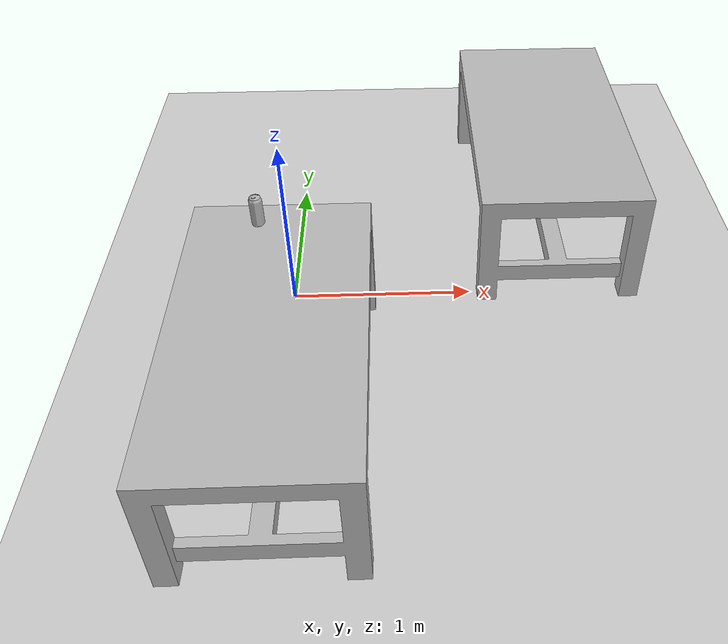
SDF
<sdf version="1.6">
  <world name="default">
    <physics name="1ms" type="dart">
      <max_step_size>0.001</max_step_size>
      <real_time_factor>1.0</real_time_factor>
    </physics>

    <plugin
      filename="ignition-gazebo-physics-system"
      name="ignition::gazebo::systems::Physics">
    </plugin>
    <plugin
      filename="ignition-gazebo-user-commands-system"
      name="ignition::gazebo::systems::UserCommands">
    </plugin>
    <plugin
      filename="ignition-gazebo-scene-broadcaster-system"
      name="ignition::gazebo::systems::SceneBroadcaster">
    </plugin>
    <plugin
      filename="ignition-gazebo-contact-system"
      name="ignition::gazebo::systems::Contact">
    </plugin>

    <!-- Lidar -->
    <plugin
      filename="libignition-gazebo-sensors-system.so"
      name="ignition::gazebo::systems::Sensors">
      <render_engine>ogre2</render_engine>
    </plugin>

    <!-- IMU -->
    <plugin
      filename="libignition-gazebo-imu-system.so"
      name="ignition::gazebo::systems::Imu">
    </plugin>

    <!-- Magnetometer -->
    <plugin
      filename="ignition-gazebo-magnetometer-system"
      name="ignition::gazebo::systems::Magnetometer">
    </plugin>

    <light type="directional" name="sun">
      <cast_shadows>true</cast_shadows>
      <pose>0 0 10 0 0 0</pose>
      <diffuse>0.8 0.8 0.8 1</diffuse>
      <specular>0.2 0.2 0.2 1</specular>
      <attenuation>
        <range>1000</range>
        <constant>0.9</constant>
        <linear>0.01</linear>
        <quadratic>0.001</quadratic>
      </attenuation>
      <direction>-0.5 0.1 -0.9</direction>
    </light>

    <model name="ground_plane">
      <static>true</static>
      <link name="link">
        <collision name="collision">
          <geometry>
            <plane>
              <normal>0 0 1</normal>
              <size>100 100</size>
            </plane>
          </geometry>
        </collision>
        <visual name="visual">
          <geometry>
            <plane>
              <normal>0 0 1</normal>
              <size>100 100</size>
            </plane>
          </geometry>
          <material>
            <ambient>0.8 0.8 0.8 1</ambient>
            <diffuse>0.8 0.8 0.8 1</diffuse>
            <specular>0.8 0.8 0.8 1</specular>
          </material>
        </visual>
      </link>
    </model>

    <include>
      <static>false</static>
      <uri>https://fuel.ignitionrobotics.org/1.0/OpenRobotics/models/Coke</uri>
      <pose>-0.025 -0.6 1.0 0 0 0</pose>
    </include>

    <!-- TODO: Move these models under repository -->
    <include>
      <name>table_start</name>
      <static>true</static>
      <pose>0 -0.9 0 0 0 0</pose>
      <uri>https://fuel.ignitionrobotics.org/1.0/OpenRobotics/models/Table</uri>
    </include>

    <include>
      <name>table_end</name>
      <static>true</static>
      <pose>1.5 0.8 0 0 0 0</pose>
      <uri>https://fuel.ignitionrobotics.org/1.0/OpenRobotics/models/Table</uri>
    </include>

  </world>
</sdf>

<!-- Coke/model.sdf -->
<sdf version="1.6">
  <model name='Coke'>
    <static>true</static>
    <link name="body">
      <pose>0 0 0 0 0 0</pose>

        <visual name="visual">
          <geometry>
            <mesh><uri>model://Coke/meshes/coke.obj</uri></mesh>
          </geometry>
        </visual>

        <collision name="collision">
          <geometry>
            <mesh><uri>model://Coke/meshes/coke.obj</uri></mesh>
          </geometry>
        </collision>

        <!-- TODO: Replace with accurate values of mass and inertia -->
        <inertial>
          <mass>1.0</mass>
          <inertia>
            <ixx>0.003366666666666667</ixx>
            <iyy>0.0008666666666666667</iyy>
            <izz>0.0041666666666666675</izz>
          </inertia>
        </inertial>

    </link>

  </model>
</sdf>

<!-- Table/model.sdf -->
<sdf version="1.5">
  <model name="Table">
    <link name="link">
      <pose>0 0 0 0 0 1.57</pose>

        <visual name="visual">
          <geometry>
            <mesh><uri>model://Table/meshes/table.obj</uri></mesh>
          </geometry>
        </visual>

        <collision name="collision">
          <geometry>
            <mesh><uri>model://Table/meshes/table.obj</uri></mesh>
          </geometry>
        </collision>

    </link>
  </model>
</sdf>
